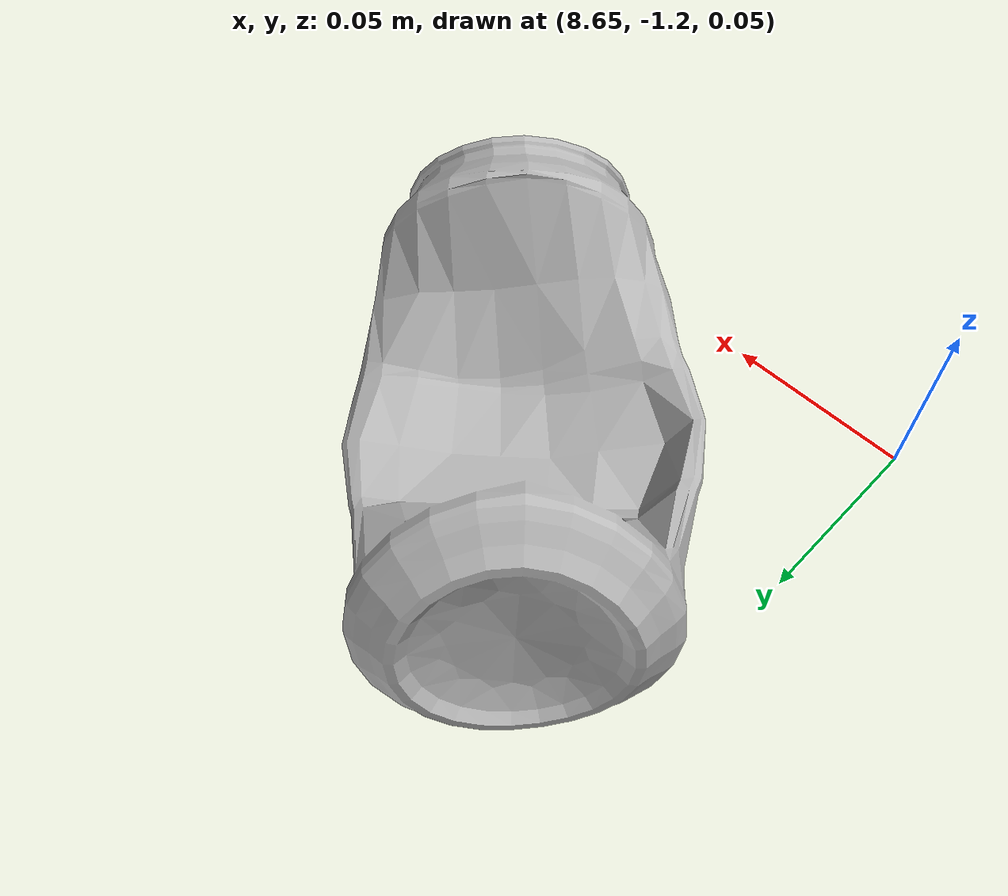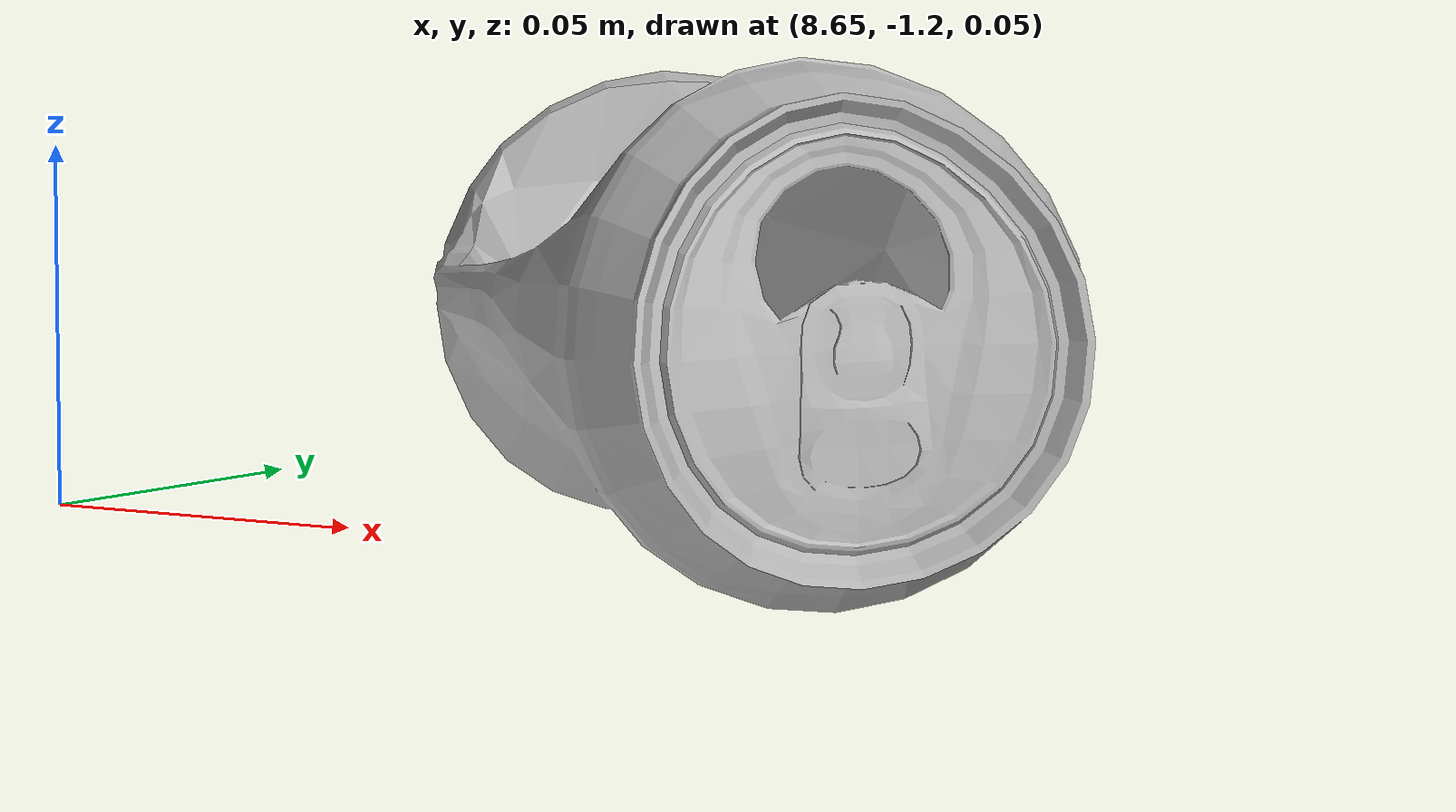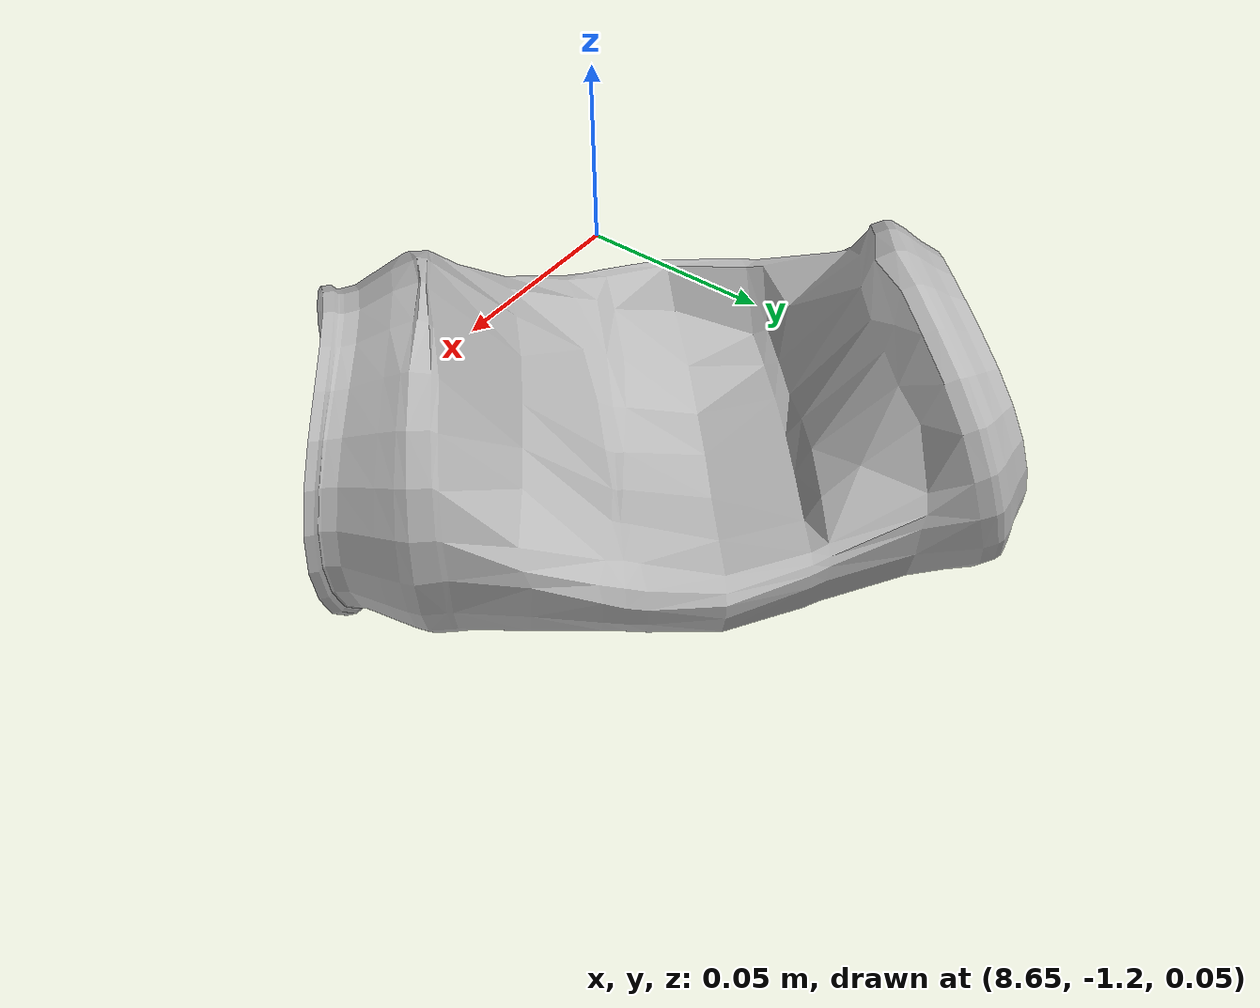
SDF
<?xml version="1.0"?>
<sdf version="1.6">
  <model name="trash_can_01">
    <static>true</static>
    <pose>0 0 0.0374 0 0 0</pose>
    <link name="link">
      <visual name="visual">
        <cast_shadows>false</cast_shadows>
        <geometry>
          <mesh>
            <uri>model://trash_can_01/meshes/trash_can_01.dae</uri>
            <scale>1.0000 1.0000 1.0000</scale>
          </mesh>
        </geometry>
      </visual>
    </link>
  </model>
</sdf>
